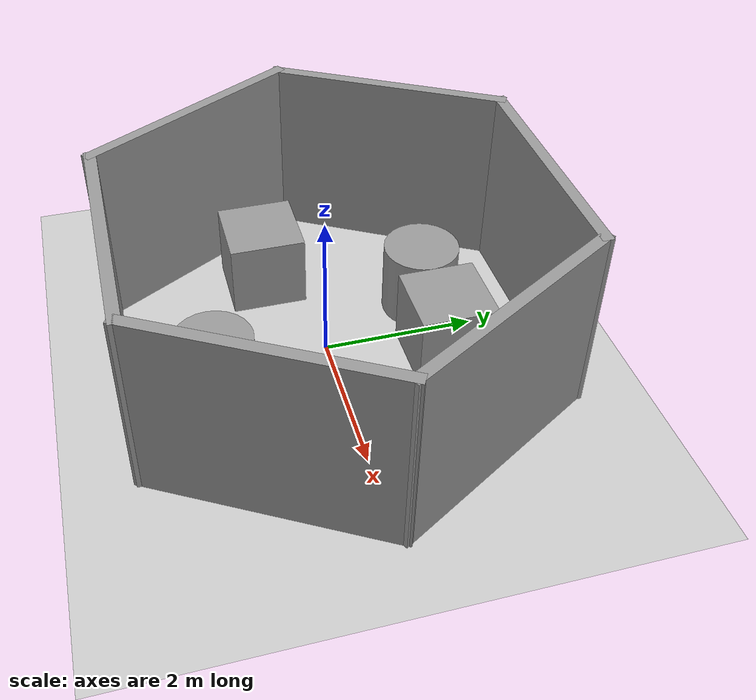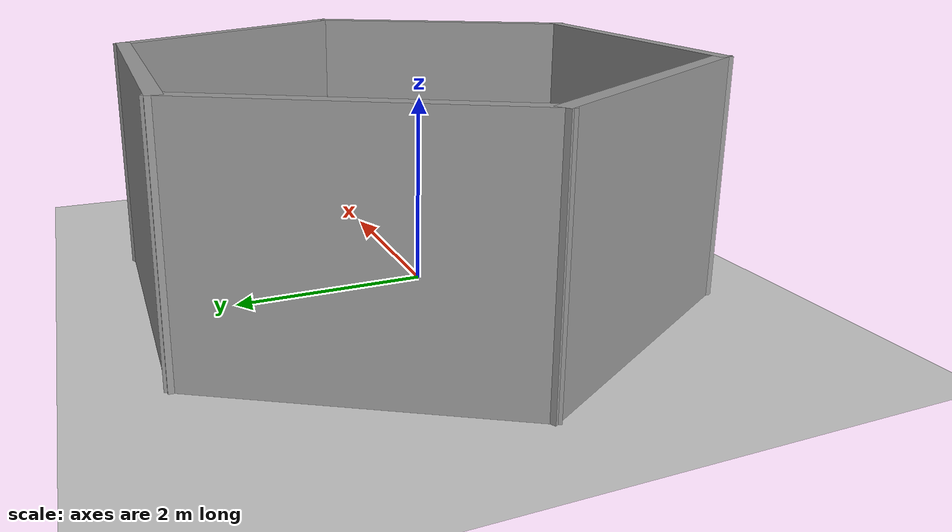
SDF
<sdf version="1.7">
 <world name="default">
  <light name="sun" type="directional">
   <pose>0 0 10 0 -0 0</pose>
   <diffuse>0.8 0.8 0.8 1</diffuse>
   <specular>0.2 0.2 0.2 1</specular>
   <attenuation>
    <range>1000</range>
    <constant>0.9</constant>
    <linear>0.01</linear>
    <quadratic>0.001</quadratic>
   </attenuation>
   <direction>-0.5 0.1 -0.9</direction>
   <spot><inner_angle>0</inner_angle><outer_angle>0</outer_angle><falloff>0</falloff></spot>
  </light>
  <model name="ground_plane">
   <static>1</static>
   <link name="link">
    <collision name="collision">
     <geometry><plane><normal>0 0 1</normal><size>100 100</size></plane></geometry>
     <surface><friction><ode><mu>100</mu><mu2>50</mu2></ode></friction></surface>
    </collision>
    <visual name="visual">
     <cast_shadows>0</cast_shadows>
     <geometry><plane><normal>0 0 1</normal><size>100 100</size></plane></geometry>
     <material>
      <script><uri>file://media/materials/scripts/gazebo.material</uri><name>Gazebo/Grey</name></script>
     </material>
    </visual>
   </link>
  </model>
  <gravity>0 0 -9.8</gravity>
  <magnetic_field>6e-06 2.3e-05 -4.2e-05</magnetic_field>
  <atmosphere type="adiabatic"/>
  <physics type="ode">
   <max_step_size>0.001</max_step_size>
   <real_time_factor>1</real_time_factor>
   <real_time_update_rate>1000</real_time_update_rate>
  </physics>
  <scene><ambient>0.4 0.4 0.4 1</ambient><background>0.7 0.7 0.7 1</background><shadows>1</shadows></scene>
  <audio><device>default</device></audio>
  <spherical_coordinates>
   <surface_model>EARTH_WGS84</surface_model>
   <latitude_deg>0</latitude_deg>
   <longitude_deg>0</longitude_deg>
   <elevation>0</elevation>
   <heading_deg>0</heading_deg>
  </spherical_coordinates>
  <model name="six_edges">
   <pose>0.081402 0.09302 0 0 -0 0</pose>
   <link name="Wall_0">
    <collision name="Wall_0_Collision">
     <geometry><box><size>3.25 0.15 2.5</size></box></geometry>
     <pose>0 0 1.25 0 -0 0</pose>
    </collision>
    <visual name="Wall_0_Visual">
     <pose>0 0 1.25 0 -0 0</pose>
     <geometry><box><size>3.25 0.15 2.5</size></box></geometry>
     <material>
      <script><uri>file://media/materials/scripts/gazebo.material</uri><name>Gazebo/Grey</name></script>
      <ambient>1 1 1 1</ambient>
     </material>
     <meta><layer>0</layer></meta>
    </visual>
    <pose>-0 2.68468 0 0 -0 0</pose>
   </link>
   <link name="Wall_1">
    <collision name="Wall_1_Collision">
     <geometry><box><size>3.25 0.15 2.5</size></box></geometry>
     <pose>0 0 1.25 0 -0 0</pose>
    </collision>
    <visual name="Wall_1_Visual">
     <pose>0 0 1.25 0 -0 0</pose>
     <geometry><box><size>3.25 0.15 2.5</size></box></geometry>
     <material>
      <script><uri>file://media/materials/scripts/gazebo.material</uri><name>Gazebo/Grey</name></script>
      <ambient>1 1 1 1</ambient>
     </material>
     <meta><layer>0</layer></meta>
    </visual>
    <pose>2.325 1.34234 0 0 -0 -1.0472</pose>
   </link>
   <link name="Wall_2">
    <collision name="Wall_2_Collision">
     <geometry><box><size>3.25 0.15 2.5</size></box></geometry>
     <pose>0 0 1.25 0 -0 0</pose>
    </collision>
    <visual name="Wall_2_Visual">
     <pose>0 0 1.25 0 -0 0</pose>
     <geometry><box><size>3.25 0.15 2.5</size></box></geometry>
     <material>
      <script><uri>file://media/materials/scripts/gazebo.material</uri><name>Gazebo/Grey</name></script>
      <ambient>1 1 1 1</ambient>
     </material>
     <meta><layer>0</layer></meta>
    </visual>
    <pose>2.325 -1.34234 0 0 -0 -2.0944</pose>
   </link>
   <link name="Wall_3">
    <collision name="Wall_3_Collision">
     <geometry><box><size>3.25 0.15 2.5</size></box></geometry>
     <pose>0 0 1.25 0 -0 0</pose>
    </collision>
    <visual name="Wall_3_Visual">
     <pose>0 0 1.25 0 -0 0</pose>
     <geometry><box><size>3.25 0.15 2.5</size></box></geometry>
     <material>
      <script><uri>file://media/materials/scripts/gazebo.material</uri><name>Gazebo/Grey</name></script>
      <ambient>1 1 1 1</ambient>
     </material>
     <meta><layer>0</layer></meta>
    </visual>
    <pose>-0 -2.68468 0 0 -0 3.14159</pose>
   </link>
   <link name="Wall_4">
    <collision name="Wall_4_Collision">
     <geometry><box><size>3.25 0.15 2.5</size></box></geometry>
     <pose>0 0 1.25 0 -0 0</pose>
    </collision>
    <visual name="Wall_4_Visual">
     <pose>0 0 1.25 0 -0 0</pose>
     <geometry><box><size>3.25 0.15 2.5</size></box></geometry>
     <material>
      <script><uri>file://media/materials/scripts/gazebo.material</uri><name>Gazebo/Grey</name></script>
      <ambient>1 1 1 1</ambient>
     </material>
     <meta><layer>0</layer></meta>
    </visual>
    <pose>-2.325 -1.34234 0 0 -0 2.0944</pose>
   </link>
   <link name="Wall_5">
    <collision name="Wall_5_Collision">
     <geometry><box><size>3.25 0.15 2.5</size></box></geometry>
     <pose>0 0 1.25 0 -0 0</pose>
    </collision>
    <visual name="Wall_5_Visual">
     <pose>0 0 1.25 0 -0 0</pose>
     <geometry><box><size>3.25 0.15 2.5</size></box></geometry>
     <material>
      <script><uri>file://media/materials/scripts/gazebo.material</uri><name>Gazebo/Grey</name></script>
      <ambient>1 1 1 1</ambient>
     </material>
     <meta><layer>0</layer></meta>
    </visual>
    <pose>-2.325 1.34234 0 0 -0 1.0472</pose>
   </link>
   <static>1</static>
  </model>
  <model name="unit_cylinder">
   <pose>0.533276 -1.52457 0.499993 -3e-06 -3e-06 0</pose>
   <link name="link">
    <inertial>
     <mass>1</mass>
     <inertia><ixx>0.145833</ixx><ixy>0</ixy><ixz>0</ixz><iyy>0.145833</iyy><iyz>0</iyz><izz>0.125</izz></inertia>
    </inertial>
    <collision name="collision">
     <geometry><cylinder><radius>0.5</radius><length>1</length></cylinder></geometry>
    </collision>
    <visual name="visual">
     <geometry><cylinder><radius>0.5</radius><length>1</length></cylinder></geometry>
     <material>
      <script><name>Gazebo/Grey</name><uri>file://media/materials/scripts/gazebo.material</uri></script>
     </material>
    </visual>
   </link>
  </model>
  <model name="unit_box">
   <pose>0.464805 1.47426 0.499995 0 1e-05 0.001049</pose>
   <link name="link">
    <inertial>
     <mass>1</mass>
     <inertia>
      <ixx>0.166667</ixx>
      <ixy>0</ixy>
      <ixz>0</ixz>
      <iyy>0.166667</iyy>
      <iyz>0</iyz>
      <izz>0.166667</izz>
     </inertia>
    </inertial>
    <collision name="collision"><geometry><box><size>1 1 1</size></box></geometry></collision>
    <visual name="visual">
     <geometry><box><size>1 1 1</size></box></geometry>
     <material>
      <script><name>Gazebo/Grey</name><uri>file://media/materials/scripts/gazebo.material</uri></script>
     </material>
    </visual>
   </link>
  </model>
  <model name="unit_box_0">
   <pose>-1.50381 -0.526538 0.499995 -1e-05 -0 0</pose>
   <link name="link">
    <inertial>
     <mass>1</mass>
     <inertia>
      <ixx>0.166667</ixx>
      <ixy>0</ixy>
      <ixz>0</ixz>
      <iyy>0.166667</iyy>
      <iyz>0</iyz>
      <izz>0.166667</izz>
     </inertia>
    </inertial>
    <collision name="collision"><geometry><box><size>1 1 1</size></box></geometry></collision>
    <visual name="visual">
     <geometry><box><size>1 1 1</size></box></geometry>
     <material>
      <script><name>Gazebo/Grey</name><uri>file://media/materials/scripts/gazebo.material</uri></script>
     </material>
    </visual>
   </link>
  </model>
  <model name="unit_cylinder_0">
   <pose>-0.535186 1.45227 0.499992 3e-06 3e-06 -0.0005</pose>
   <link name="link">
    <inertial>
     <mass>1</mass>
     <inertia><ixx>0.145833</ixx><ixy>0</ixy><ixz>0</ixz><iyy>0.145833</iyy><iyz>0</iyz><izz>0.125</izz></inertia>
    </inertial>
    <collision name="collision">
     <geometry><cylinder><radius>0.5</radius><length>1</length></cylinder></geometry>
    </collision>
    <visual name="visual">
     <geometry><cylinder><radius>0.5</radius><length>1</length></cylinder></geometry>
     <material>
      <script><name>Gazebo/Grey</name><uri>file://media/materials/scripts/gazebo.material</uri></script>
     </material>
    </visual>
   </link>
  </model>
 </world>
</sdf>
